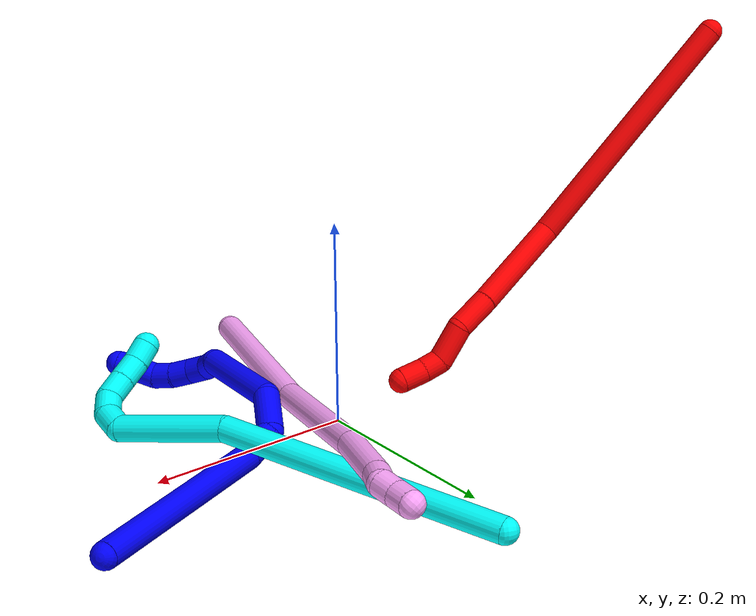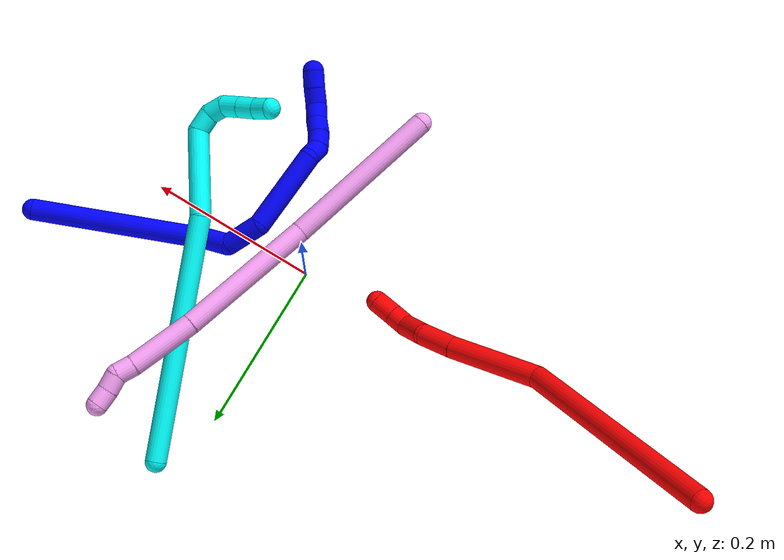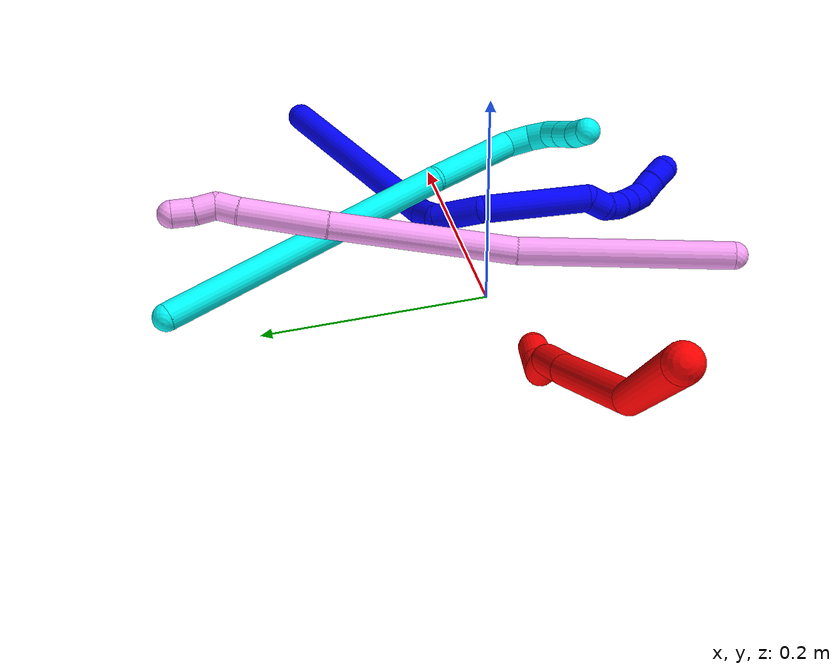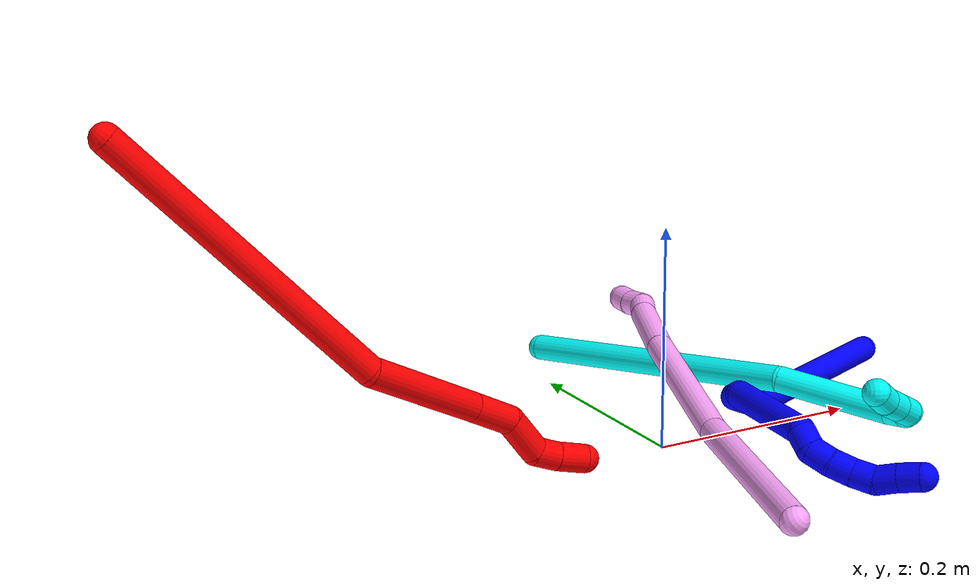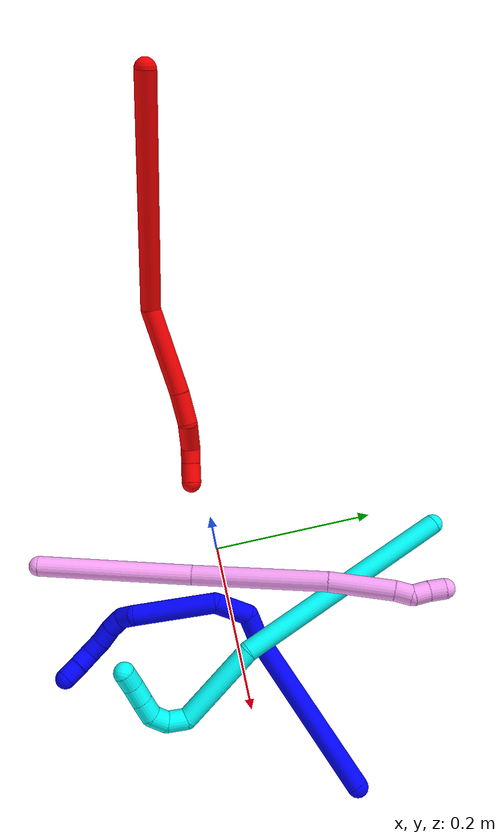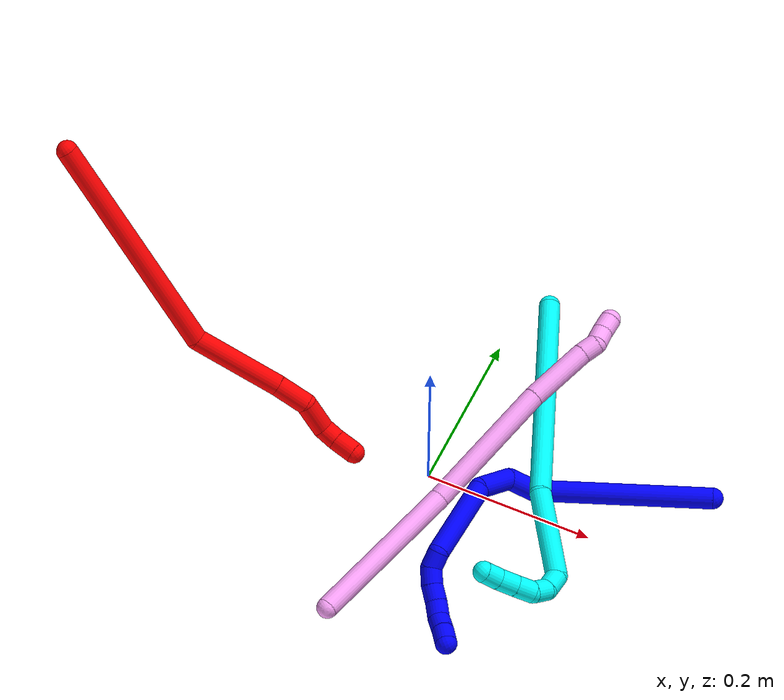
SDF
<sdf version="1.7">
 <world name="default">
  <plugin name="TubeGeneratorPlugin" filename="libtube_generator_plugin.so"/>
  <model name="photoneo_s_sensor">
   <static>1</static>
   <pose>0 0 2 1.57079 1.57079 3.14159</pose>
   <link name="link">
    <inertial><mass>0.1</mass></inertial>
    <sensor name="sensor" type="depth">
     <update_rate>30</update_rate>
     <camera>
      <horizontal_fov>1.22</horizontal_fov>
      <image><width>1920</width><height>1200</height><format>B8G8R8</format></image>
      <clip><near>0.1</near><far>4</far></clip>
      <depth_camera><output>points</output></depth_camera>
     </camera>
     <plugin name="camera_plugin" filename="libgazebo_ros_depth_camera.so">
      <baseline>0.2</baseline>
      <alwaysOn>1</alwaysOn>
      <updateRate>0.0</updateRate>
      <cameraName>camera_ir</cameraName>
      <imageTopicName>/camera/color/image_raw</imageTopicName>
      <cameraInfoTopicName>/camera/color/camera_info</cameraInfoTopicName>
      <depthImageTopicName>/camera/depth/image_raw</depthImageTopicName>
      <depthImageCameraInfoTopicName>/camera/depth/camera_info</depthImageCameraInfoTopicName>
      <pointCloudTopicName>/camera/depth/points</pointCloudTopicName>
      <frameName>fr_optical</frameName>
      <pointCloudCutoff>0.1</pointCloudCutoff>
      <pointCloudCutoffMax>2.0</pointCloudCutoffMax>
      <distortionK1>0</distortionK1>
      <distortionK2>0</distortionK2>
      <distortionK3>0</distortionK3>
      <distortionT1>0</distortionT1>
      <distortionT2>0</distortionT2>
      <CxPrime>0</CxPrime>
      <Cx>0</Cx>
      <Cy>0</Cy>
      <focalLength>0</focalLength>
      <hackBaseline>0</hackBaseline>
     </plugin>
    </sensor>
   </link>
  </model>
  <gravity>0 0 -9.8</gravity>
  <magnetic_field>6e-06 2.3e-05 -4.2e-05</magnetic_field>
  <atmosphere type="adiabatic"/>
  <physics name="default_physics" default="0" type="ode">
   <max_step_size>0.003</max_step_size>
   <real_time_factor>1</real_time_factor>
   <real_time_update_rate>1000</real_time_update_rate>
   <max_contacts>10000</max_contacts>
   <ode>
    <solver>
     <type>quick</type>
     <iters>100</iters>
     <sor>1.3</sor>
     <use_dynamic_moi_rescaling>0</use_dynamic_moi_rescaling>
    </solver>
    <constraints>
     <contact_max_correcting_vel>0</contact_max_correcting_vel>
     <contact_surface_layer>0.001</contact_surface_layer>
     <cfm>0</cfm>
     <erp>0.2</erp>
    </constraints>
   </ode>
  </physics>
  <scene><ambient>0.4 0.4 0.4 1</ambient><background>0.7 0.7 0.7 1</background><shadows>0</shadows></scene>
  <audio><device>default</device></audio>
  <spherical_coordinates>
   <surface_model>EARTH_WGS84</surface_model>
   <latitude_deg>0</latitude_deg>
   <longitude_deg>0</longitude_deg>
   <elevation>0</elevation>
   <heading_deg>0</heading_deg>
  </spherical_coordinates>
  <model name="bin">
   <static>1</static>
   <link name="bottom">
    <collision name="collision-bottom">
     <pose>0 0 -0.01 0 -0 0</pose>
     <geometry><box><size>0.8 0.6 0.02</size></box></geometry>
     <surface>
      <friction><ode><mu>100</mu><mu2>100</mu2></ode></friction>
      <contact><collide_bitmask>65535</collide_bitmask></contact>
     </surface>
    </collision>
   </link>
   <link name="west_wall">
    <collision name="collision-west_wall">
     <pose>-0.41 0 0.1 0 -0 0</pose>
     <geometry><box><size>0.02 0.6 0.2</size></box></geometry>
     <surface>
      <friction><ode><mu>100</mu><mu2>100</mu2></ode></friction>
      <contact><collide_bitmask>65535</collide_bitmask></contact>
     </surface>
    </collision>
   </link>
   <link name="east_wall">
    <collision name="collision-east_wall">
     <pose>0.41 0 0.1 0 -0 0</pose>
     <geometry><box><size>0.02 0.6 0.2</size></box></geometry>
     <surface>
      <friction><ode><mu>100</mu><mu2>100</mu2></ode></friction>
      <contact><collide_bitmask>65535</collide_bitmask></contact>
     </surface>
    </collision>
   </link>
   <link name="south_wall">
    <collision name="collision-south_wall">
     <pose>0 -0.31 0.1 0 -0 0</pose>
     <geometry><box><size>0.8 0.02 0.2</size></box></geometry>
     <surface>
      <friction><ode><mu>100</mu><mu2>100</mu2></ode></friction>
      <contact><collide_bitmask>65535</collide_bitmask></contact>
     </surface>
    </collision>
   </link>
   <link name="north_wall">
    <collision name="collision-north_wall">
     <pose>0 0.31 0.1 0 -0 0</pose>
     <geometry><box><size>0.8 0.02 0.2</size></box></geometry>
     <surface>
      <friction><ode><mu>100</mu><mu2>100</mu2></ode></friction>
      <contact><collide_bitmask>65535</collide_bitmask></contact>
     </surface>
    </collision>
   </link>
  </model>
  <model name="1">
   <static>0</static>
   <link name="1">
    <collision name="collision-cylinder-e_1_1_4">
     <pose>-0.046195 0.008323 -0.09092 -3.0503 -0.46841 2.76327</pose>
     <geometry><cylinder><radius>0.0125</radius><length>0.204642</length></cylinder></geometry>
     <surface>
      <friction><ode><mu>1.16</mu><mu2>1.16</mu2><slip1>0</slip1><slip2>0</slip2></ode></friction>
      <contact><ode><kp>1e+06</kp><kd>1</kd><max_vel>0</max_vel><min_depth>0.001</min_depth></ode></contact>
     </surface>
    </collision>
    <visual name="visual-cylinder-e_1_1_4">
     <pose>-0.046195 0.008323 -0.09092 -3.0503 -0.46841 2.76327</pose>
     <geometry><cylinder><radius>0.0125</radius><length>0.204642</length></cylinder></geometry>
     <material><ambient>0 0 1 1</ambient></material>
    </visual>
    <collision name="collision-cylinder-e_2_4_5">
     <pose>-0.105397 0.016515 -0.191349 3.12774 -0.939459 -3.1143</pose>
     <geometry><cylinder><radius>0.0125</radius><length>0.032228</length></cylinder></geometry>
     <surface>
      <friction><ode><mu>1.16</mu><mu2>1.16</mu2><slip1>0</slip1><slip2>0</slip2></ode></friction>
      <contact><ode><kp>1e+06</kp><kd>1</kd><max_vel>0</max_vel><min_depth>0.001</min_depth></ode></contact>
     </surface>
    </collision>
    <visual name="visual-cylinder-e_2_4_5">
     <pose>-0.105397 0.016515 -0.191349 3.12774 -0.939459 -3.1143</pose>
     <geometry><cylinder><radius>0.0125</radius><length>0.032228</length></cylinder></geometry>
     <material><ambient>0 0 1 1</ambient></material>
    </visual>
    <collision name="collision-cylinder-e_3_5_6">
     <pose>-0.127061 0.002289 -0.216134 2.39637 -0.394633 -0.945566</pose>
     <geometry><cylinder><radius>0.0125</radius><length>0.045028</length></cylinder></geometry>
     <surface>
      <friction><ode><mu>1.16</mu><mu2>1.16</mu2><slip1>0</slip1><slip2>0</slip2></ode></friction>
      <contact><ode><kp>1e+06</kp><kd>1</kd><max_vel>0</max_vel><min_depth>0.001</min_depth></ode></contact>
     </surface>
    </collision>
    <visual name="visual-cylinder-e_3_5_6">
     <pose>-0.127061 0.002289 -0.216134 2.39637 -0.394633 -0.945566</pose>
     <geometry><cylinder><radius>0.0125</radius><length>0.045028</length></cylinder></geometry>
     <material><ambient>0 0 1 1</ambient></material>
    </visual>
    <collision name="collision-cylinder-e_4_6_7">
     <pose>-0.126166 -0.047687 -0.263378 2.29859 0.196199 0.432136</pose>
     <geometry><cylinder><radius>0.0125</radius><length>0.097996</length></cylinder></geometry>
     <surface>
      <friction><ode><mu>1.16</mu><mu2>1.16</mu2><slip1>0</slip1><slip2>0</slip2></ode></friction>
      <contact><ode><kp>1e+06</kp><kd>1</kd><max_vel>0</max_vel><min_depth>0.001</min_depth></ode></contact>
     </surface>
    </collision>
    <visual name="visual-cylinder-e_4_6_7">
     <pose>-0.126166 -0.047687 -0.263378 2.29859 0.196199 0.432136</pose>
     <geometry><cylinder><radius>0.0125</radius><length>0.097996</length></cylinder></geometry>
     <material><ambient>0 0 1 1</ambient></material>
    </visual>
    <collision name="collision-cylinder-e_5_7_8">
     <pose>-0.110766 -0.086618 -0.30289 2.75739 0.623263 2.05517</pose>
     <geometry><cylinder><radius>0.0125</radius><length>0.020038</length></cylinder></geometry>
     <surface>
      <friction><ode><mu>1.16</mu><mu2>1.16</mu2><slip1>0</slip1><slip2>0</slip2></ode></friction>
      <contact><ode><kp>1e+06</kp><kd>1</kd><max_vel>0</max_vel><min_depth>0.001</min_depth></ode></contact>
     </surface>
    </collision>
    <visual name="visual-cylinder-e_5_7_8">
     <pose>-0.110766 -0.086618 -0.30289 2.75739 0.623263 2.05517</pose>
     <geometry><cylinder><radius>0.0125</radius><length>0.020038</length></cylinder></geometry>
     <material><ambient>0 0 1 1</ambient></material>
    </visual>
    <collision name="collision-cylinder-e_6_8_9">
     <pose>-0.097586 -0.095701 -0.313585 2.0524 0.822454 1.24803</pose>
     <geometry><cylinder><radius>0.0125</radius><length>0.02001</length></cylinder></geometry>
     <surface>
      <friction><ode><mu>1.16</mu><mu2>1.16</mu2><slip1>0</slip1><slip2>0</slip2></ode></friction>
      <contact><ode><kp>1e+06</kp><kd>1</kd><max_vel>0</max_vel><min_depth>0.001</min_depth></ode></contact>
     </surface>
    </collision>
    <visual name="visual-cylinder-e_6_8_9">
     <pose>-0.097586 -0.095701 -0.313585 2.0524 0.822454 1.24803</pose>
     <geometry><cylinder><radius>0.0125</radius><length>0.02001</length></cylinder></geometry>
     <material><ambient>0 0 1 1</ambient></material>
    </visual>
    <collision name="collision-cylinder-e_7_9_10">
     <pose>-0.082645 -0.108113 -0.31803 1.77052 0.8632 1.02573</pose>
     <geometry><cylinder><radius>0.0125</radius><length>0.020025</length></cylinder></geometry>
     <surface>
      <friction><ode><mu>1.16</mu><mu2>1.16</mu2><slip1>0</slip1><slip2>0</slip2></ode></friction>
      <contact><ode><kp>1e+06</kp><kd>1</kd><max_vel>0</max_vel><min_depth>0.001</min_depth></ode></contact>
     </surface>
    </collision>
    <visual name="visual-cylinder-e_7_9_10">
     <pose>-0.082645 -0.108113 -0.31803 1.77052 0.8632 1.02573</pose>
     <geometry><cylinder><radius>0.0125</radius><length>0.020025</length></cylinder></geometry>
     <material><ambient>0 0 1 1</ambient></material>
    </visual>
    <collision name="collision-cylinder-e_8_10_11">
     <pose>-0.068711 -0.122059 -0.321031 1.79303 0.684096 0.838165</pose>
     <geometry><cylinder><radius>0.0125</radius><length>0.020019</length></cylinder></geometry>
     <surface>
      <friction><ode><mu>1.16</mu><mu2>1.16</mu2><slip1>0</slip1><slip2>0</slip2></ode></friction>
      <contact><ode><kp>1e+06</kp><kd>1</kd><max_vel>0</max_vel><min_depth>0.001</min_depth></ode></contact>
     </surface>
    </collision>
    <visual name="visual-cylinder-e_8_10_11">
     <pose>-0.068711 -0.122059 -0.321031 1.79303 0.684096 0.838165</pose>
     <geometry><cylinder><radius>0.0125</radius><length>0.020019</length></cylinder></geometry>
     <material><ambient>0 0 1 1</ambient></material>
    </visual>
    <collision name="collision-cylinder-e_9_11_12">
     <pose>-0.059345 -0.139131 -0.322078 1.50118 0.308836 0.288346</pose>
     <geometry><cylinder><radius>0.0125</radius><length>0.020003</length></cylinder></geometry>
     <surface>
      <friction><ode><mu>1.16</mu><mu2>1.16</mu2><slip1>0</slip1><slip2>0</slip2></ode></friction>
      <contact><ode><kp>1e+06</kp><kd>1</kd><max_vel>0</max_vel><min_depth>0.001</min_depth></ode></contact>
     </surface>
    </collision>
    <visual name="visual-cylinder-e_9_11_12">
     <pose>-0.059345 -0.139131 -0.322078 1.50118 0.308836 0.288346</pose>
     <geometry><cylinder><radius>0.0125</radius><length>0.020003</length></cylinder></geometry>
     <material><ambient>0 0 1 1</ambient></material>
    </visual>
    <collision name="collision-cylinder-e_10_12_2">
     <pose>-0.05279 -0.158002 -0.321533 1.58345 0.35897 0.36344</pose>
     <geometry><cylinder><radius>0.0125</radius><length>0.020009</length></cylinder></geometry>
     <surface>
      <friction><ode><mu>1.16</mu><mu2>1.16</mu2><slip1>0</slip1><slip2>0</slip2></ode></friction>
      <contact><ode><kp>1e+06</kp><kd>1</kd><max_vel>0</max_vel><min_depth>0.001</min_depth></ode></contact>
     </surface>
    </collision>
    <visual name="visual-cylinder-e_10_12_2">
     <pose>-0.05279 -0.158002 -0.321533 1.58345 0.35897 0.36344</pose>
     <geometry><cylinder><radius>0.0125</radius><length>0.020009</length></cylinder></geometry>
     <material><ambient>0 0 1 1</ambient></material>
    </visual>
    <collision name="collision-sphere-2">
     <pose>-0.049275 -0.167369 -0.321652 0 -0 0</pose>
     <geometry><sphere><radius>0.0125</radius></sphere></geometry>
     <surface>
      <friction><ode><mu>1.16</mu><mu2>1.16</mu2><slip1>0</slip1><slip2>0</slip2></ode></friction>
      <contact><ode><kp>1e+06</kp><kd>1</kd><max_vel>0</max_vel><min_depth>0.001</min_depth></ode></contact>
     </surface>
    </collision>
    <visual name="visual-sphere-2">
     <pose>-0.049275 -0.167369 -0.321652 0 -0 0</pose>
     <geometry><sphere><radius>0.0125</radius></sphere></geometry>
     <material><ambient>0 0 1 1</ambient></material>
    </visual>
    <collision name="collision-sphere-12">
     <pose>-0.056305 -0.148636 -0.321415 0 -0 0</pose>
     <geometry><sphere><radius>0.0125</radius></sphere></geometry>
     <surface>
      <friction><ode><mu>1.16</mu><mu2>1.16</mu2><slip1>0</slip1><slip2>0</slip2></ode></friction>
      <contact><ode><kp>1e+06</kp><kd>1</kd><max_vel>0</max_vel><min_depth>0.001</min_depth></ode></contact>
     </surface>
    </collision>
    <visual name="visual-sphere-12">
     <pose>-0.056305 -0.148636 -0.321415 0 -0 0</pose>
     <geometry><sphere><radius>0.0125</radius></sphere></geometry>
     <material><ambient>0 0 1 1</ambient></material>
    </visual>
    <collision name="collision-sphere-11">
     <pose>-0.062385 -0.129625 -0.32274 0 -0 0</pose>
     <geometry><sphere><radius>0.0125</radius></sphere></geometry>
     <surface>
      <friction><ode><mu>1.16</mu><mu2>1.16</mu2><slip1>0</slip1><slip2>0</slip2></ode></friction>
      <contact><ode><kp>1e+06</kp><kd>1</kd><max_vel>0</max_vel><min_depth>0.001</min_depth></ode></contact>
     </surface>
    </collision>
    <visual name="visual-sphere-11">
     <pose>-0.062385 -0.129625 -0.32274 0 -0 0</pose>
     <geometry><sphere><radius>0.0125</radius></sphere></geometry>
     <material><ambient>0 0 1 1</ambient></material>
    </visual>
    <collision name="collision-sphere-10">
     <pose>-0.075036 -0.114492 -0.319321 0 -0 0</pose>
     <geometry><sphere><radius>0.0125</radius></sphere></geometry>
     <surface>
      <friction><ode><mu>1.16</mu><mu2>1.16</mu2><slip1>0</slip1><slip2>0</slip2></ode></friction>
      <contact><ode><kp>1e+06</kp><kd>1</kd><max_vel>0</max_vel><min_depth>0.001</min_depth></ode></contact>
     </surface>
    </collision>
    <visual name="visual-sphere-10">
     <pose>-0.075036 -0.114492 -0.319321 0 -0 0</pose>
     <geometry><sphere><radius>0.0125</radius></sphere></geometry>
     <material><ambient>0 0 1 1</ambient></material>
    </visual>
    <collision name="collision-sphere-9">
     <pose>-0.090254 -0.101734 -0.316738 0 -0 0</pose>
     <geometry><sphere><radius>0.0125</radius></sphere></geometry>
     <surface>
      <friction><ode><mu>1.16</mu><mu2>1.16</mu2><slip1>0</slip1><slip2>0</slip2></ode></friction>
      <contact><ode><kp>1e+06</kp><kd>1</kd><max_vel>0</max_vel><min_depth>0.001</min_depth></ode></contact>
     </surface>
    </collision>
    <visual name="visual-sphere-9">
     <pose>-0.090254 -0.101734 -0.316738 0 -0 0</pose>
     <geometry><sphere><radius>0.0125</radius></sphere></geometry>
     <material><ambient>0 0 1 1</ambient></material>
    </visual>
    <collision name="collision-sphere-4">
     <pose>-0.092389 0.016646 -0.181839 0 -0 0</pose>
     <geometry><sphere><radius>0.0125</radius></sphere></geometry>
     <surface>
      <friction><ode><mu>1.16</mu><mu2>1.16</mu2><slip1>0</slip1><slip2>0</slip2></ode></friction>
      <contact><ode><kp>1e+06</kp><kd>1</kd><max_vel>0</max_vel><min_depth>0.001</min_depth></ode></contact>
     </surface>
    </collision>
    <visual name="visual-sphere-4">
     <pose>-0.092389 0.016646 -0.181839 0 -0 0</pose>
     <geometry><sphere><radius>0.0125</radius></sphere></geometry>
     <material><ambient>0 0 1 1</ambient></material>
    </visual>
    <collision name="collision-sphere-1">
     <geometry><sphere><radius>0.0125</radius></sphere></geometry>
     <surface>
      <friction><ode><mu>1.16</mu><mu2>1.16</mu2><slip1>0</slip1><slip2>0</slip2></ode></friction>
      <contact><ode><kp>1e+06</kp><kd>1</kd><max_vel>0</max_vel><min_depth>0.001</min_depth></ode></contact>
     </surface>
    </collision>
    <visual name="visual-sphere-1">
     <geometry><sphere><radius>0.0125</radius></sphere></geometry>
     <material><ambient>0 0 1 1</ambient></material>
    </visual>
    <collision name="collision-sphere-8">
     <pose>-0.104918 -0.089668 -0.310432 0 -0 0</pose>
     <geometry><sphere><radius>0.0125</radius></sphere></geometry>
     <surface>
      <friction><ode><mu>1.16</mu><mu2>1.16</mu2><slip1>0</slip1><slip2>0</slip2></ode></friction>
      <contact><ode><kp>1e+06</kp><kd>1</kd><max_vel>0</max_vel><min_depth>0.001</min_depth></ode></contact>
     </surface>
    </collision>
    <visual name="visual-sphere-8">
     <pose>-0.104918 -0.089668 -0.310432 0 -0 0</pose>
     <geometry><sphere><radius>0.0125</radius></sphere></geometry>
     <material><ambient>0 0 1 1</ambient></material>
    </visual>
    <collision name="collision-sphere-5">
     <pose>-0.118405 0.016383 -0.20086 0 -0 0</pose>
     <geometry><sphere><radius>0.0125</radius></sphere></geometry>
     <surface>
      <friction><ode><mu>1.16</mu><mu2>1.16</mu2><slip1>0</slip1><slip2>0</slip2></ode></friction>
      <contact><ode><kp>1e+06</kp><kd>1</kd><max_vel>0</max_vel><min_depth>0.001</min_depth></ode></contact>
     </surface>
    </collision>
    <visual name="visual-sphere-5">
     <pose>-0.118405 0.016383 -0.20086 0 -0 0</pose>
     <geometry><sphere><radius>0.0125</radius></sphere></geometry>
     <material><ambient>0 0 1 1</ambient></material>
    </visual>
    <collision name="collision-sphere-6">
     <pose>-0.135717 -0.011805 -0.231409 0 -0 0</pose>
     <geometry><sphere><radius>0.0125</radius></sphere></geometry>
     <surface>
      <friction><ode><mu>1.16</mu><mu2>1.16</mu2><slip1>0</slip1><slip2>0</slip2></ode></friction>
      <contact><ode><kp>1e+06</kp><kd>1</kd><max_vel>0</max_vel><min_depth>0.001</min_depth></ode></contact>
     </surface>
    </collision>
    <visual name="visual-sphere-6">
     <pose>-0.135717 -0.011805 -0.231409 0 -0 0</pose>
     <geometry><sphere><radius>0.0125</radius></sphere></geometry>
     <material><ambient>0 0 1 1</ambient></material>
    </visual>
    <collision name="collision-sphere-7">
     <pose>-0.116614 -0.083569 -0.295348 0 -0 0</pose>
     <geometry><sphere><radius>0.0125</radius></sphere></geometry>
     <surface>
      <friction><ode><mu>1.16</mu><mu2>1.16</mu2><slip1>0</slip1><slip2>0</slip2></ode></friction>
      <contact><ode><kp>1e+06</kp><kd>1</kd><max_vel>0</max_vel><min_depth>0.001</min_depth></ode></contact>
     </surface>
    </collision>
    <visual name="visual-sphere-7">
     <pose>-0.116614 -0.083569 -0.295348 0 -0 0</pose>
     <geometry><sphere><radius>0.0125</radius></sphere></geometry>
     <material><ambient>0 0 1 1</ambient></material>
    </visual>
    <inertial>
     <pose>-0.080763 -0.033077 -0.196662 0 -0 0</pose>
     <mass>0.5</mass>
     <inertia>
      <ixx>-0.000254</ixx>
      <ixy>0</ixy>
      <ixz>0</ixz>
      <iyy>0.000896</iyy>
      <iyz>0</iyz>
      <izz>0.0003</izz>
     </inertia>
    </inertial>
   </link>
   <pose>0.310571 0.101571 0.012921 -0.957346 0.898231 -0.369615</pose>
  </model>
  <model name="2">
   <static>0</static>
   <link name="2">
    <collision name="collision-cylinder-e_1_1_4">
     <pose>-0.003166 -0.002546 -0.133541 3.12253 -0.0237 -1.78685</pose>
     <geometry><cylinder><radius>0.0125</radius><length>0.267205</length></cylinder></geometry>
     <surface>
      <friction><ode><mu>1.16</mu><mu2>1.16</mu2><slip1>0</slip1><slip2>0</slip2></ode></friction>
      <contact><ode><kp>1e+06</kp><kd>1</kd><max_vel>0</max_vel><min_depth>0.001</min_depth></ode></contact>
     </surface>
    </collision>
    <visual name="visual-cylinder-e_1_1_4">
     <pose>-0.003166 -0.002546 -0.133541 3.12253 -0.0237 -1.78685</pose>
     <geometry><cylinder><radius>0.0125</radius><length>0.267205</length></cylinder></geometry>
     <material><ambient>1 0 0 1</ambient></material>
    </visual>
    <collision name="collision-cylinder-e_2_4_5">
     <pose>0.013438 0.00492 -0.316386 -2.94124 0.37442 -2.16594</pose>
     <geometry><cylinder><radius>0.0125</radius><length>0.108111</length></cylinder></geometry>
     <surface>
      <friction><ode><mu>1.16</mu><mu2>1.16</mu2><slip1>0</slip1><slip2>0</slip2></ode></friction>
      <contact><ode><kp>1e+06</kp><kd>1</kd><max_vel>0</max_vel><min_depth>0.001</min_depth></ode></contact>
     </surface>
    </collision>
    <visual name="visual-cylinder-e_2_4_5">
     <pose>0.013438 0.00492 -0.316386 -2.94124 0.37442 -2.16594</pose>
     <geometry><cylinder><radius>0.0125</radius><length>0.108111</length></cylinder></geometry>
     <material><ambient>1 0 0 1</ambient></material>
    </visual>
    <collision name="collision-cylinder-e_3_5_6">
     <pose>0.040283 0.017337 -0.384384 -3.01366 0.359133 -2.46315</pose>
     <geometry><cylinder><radius>0.0125</radius><length>0.040264</length></cylinder></geometry>
     <surface>
      <friction><ode><mu>1.16</mu><mu2>1.16</mu2><slip1>0</slip1><slip2>0</slip2></ode></friction>
      <contact><ode><kp>1e+06</kp><kd>1</kd><max_vel>0</max_vel><min_depth>0.001</min_depth></ode></contact>
     </surface>
    </collision>
    <visual name="visual-cylinder-e_3_5_6">
     <pose>0.040283 0.017337 -0.384384 -3.01366 0.359133 -2.46315</pose>
     <geometry><cylinder><radius>0.0125</radius><length>0.040264</length></cylinder></geometry>
     <material><ambient>1 0 0 1</ambient></material>
    </visual>
    <collision name="collision-cylinder-e_4_6_7">
     <pose>0.045118 0.02201 -0.422103 -3.02292 -0.116442 1.55183</pose>
     <geometry><cylinder><radius>0.0125</radius><length>0.03858</length></cylinder></geometry>
     <surface>
      <friction><ode><mu>1.16</mu><mu2>1.16</mu2><slip1>0</slip1><slip2>0</slip2></ode></friction>
      <contact><ode><kp>1e+06</kp><kd>1</kd><max_vel>0</max_vel><min_depth>0.001</min_depth></ode></contact>
     </surface>
    </collision>
    <visual name="visual-cylinder-e_4_6_7">
     <pose>0.045118 0.02201 -0.422103 -3.02292 -0.116442 1.55183</pose>
     <geometry><cylinder><radius>0.0125</radius><length>0.03858</length></cylinder></geometry>
     <material><ambient>1 0 0 1</ambient></material>
    </visual>
    <collision name="collision-cylinder-e_5_7_8">
     <pose>0.047092 0.022687 -0.450386 2.97134 0.421755 2.38292</pose>
     <geometry><cylinder><radius>0.0125</radius><length>0.020595</length></cylinder></geometry>
     <surface>
      <friction><ode><mu>1.16</mu><mu2>1.16</mu2><slip1>0</slip1><slip2>0</slip2></ode></friction>
      <contact><ode><kp>1e+06</kp><kd>1</kd><max_vel>0</max_vel><min_depth>0.001</min_depth></ode></contact>
     </surface>
    </collision>
    <visual name="visual-cylinder-e_5_7_8">
     <pose>0.047092 0.022687 -0.450386 2.97134 0.421755 2.38292</pose>
     <geometry><cylinder><radius>0.0125</radius><length>0.020595</length></cylinder></geometry>
     <material><ambient>1 0 0 1</ambient></material>
    </visual>
    <collision name="collision-cylinder-e_6_8_2">
     <pose>0.057857 0.018962 -0.470223 2.94259 0.545539 2.45603</pose>
     <geometry><cylinder><radius>0.0125</radius><length>0.025244</length></cylinder></geometry>
     <surface>
      <friction><ode><mu>1.16</mu><mu2>1.16</mu2><slip1>0</slip1><slip2>0</slip2></ode></friction>
      <contact><ode><kp>1e+06</kp><kd>1</kd><max_vel>0</max_vel><min_depth>0.001</min_depth></ode></contact>
     </surface>
    </collision>
    <visual name="visual-cylinder-e_6_8_2">
     <pose>0.057857 0.018962 -0.470223 2.94259 0.545539 2.45603</pose>
     <geometry><cylinder><radius>0.0125</radius><length>0.025244</length></cylinder></geometry>
     <material><ambient>1 0 0 1</ambient></material>
    </visual>
    <collision name="collision-sphere-2">
     <pose>0.064406 0.016829 -0.4808 0 -0 0</pose>
     <geometry><sphere><radius>0.0125</radius></sphere></geometry>
     <surface>
      <friction><ode><mu>1.16</mu><mu2>1.16</mu2><slip1>0</slip1><slip2>0</slip2></ode></friction>
      <contact><ode><kp>1e+06</kp><kd>1</kd><max_vel>0</max_vel><min_depth>0.001</min_depth></ode></contact>
     </surface>
    </collision>
    <visual name="visual-sphere-2">
     <pose>0.064406 0.016829 -0.4808 0 -0 0</pose>
     <geometry><sphere><radius>0.0125</radius></sphere></geometry>
     <material><ambient>1 0 0 1</ambient></material>
    </visual>
    <collision name="collision-sphere-4">
     <pose>-0.006332 -0.005092 -0.267081 0 -0 0</pose>
     <geometry><sphere><radius>0.0125</radius></sphere></geometry>
     <surface>
      <friction><ode><mu>1.16</mu><mu2>1.16</mu2><slip1>0</slip1><slip2>0</slip2></ode></friction>
      <contact><ode><kp>1e+06</kp><kd>1</kd><max_vel>0</max_vel><min_depth>0.001</min_depth></ode></contact>
     </surface>
    </collision>
    <visual name="visual-sphere-4">
     <pose>-0.006332 -0.005092 -0.267081 0 -0 0</pose>
     <geometry><sphere><radius>0.0125</radius></sphere></geometry>
     <material><ambient>1 0 0 1</ambient></material>
    </visual>
    <collision name="collision-sphere-1">
     <geometry><sphere><radius>0.0125</radius></sphere></geometry>
     <surface>
      <friction><ode><mu>1.16</mu><mu2>1.16</mu2><slip1>0</slip1><slip2>0</slip2></ode></friction>
      <contact><ode><kp>1e+06</kp><kd>1</kd><max_vel>0</max_vel><min_depth>0.001</min_depth></ode></contact>
     </surface>
    </collision>
    <visual name="visual-sphere-1">
     <geometry><sphere><radius>0.0125</radius></sphere></geometry>
     <material><ambient>1 0 0 1</ambient></material>
    </visual>
    <collision name="collision-sphere-8">
     <pose>0.051307 0.021095 -0.459646 0 -0 0</pose>
     <geometry><sphere><radius>0.0125</radius></sphere></geometry>
     <surface>
      <friction><ode><mu>1.16</mu><mu2>1.16</mu2><slip1>0</slip1><slip2>0</slip2></ode></friction>
      <contact><ode><kp>1e+06</kp><kd>1</kd><max_vel>0</max_vel><min_depth>0.001</min_depth></ode></contact>
     </surface>
    </collision>
    <visual name="visual-sphere-8">
     <pose>0.051307 0.021095 -0.459646 0 -0 0</pose>
     <geometry><sphere><radius>0.0125</radius></sphere></geometry>
     <material><ambient>1 0 0 1</ambient></material>
    </visual>
    <collision name="collision-sphere-5">
     <pose>0.033208 0.014933 -0.36569 0 -0 0</pose>
     <geometry><sphere><radius>0.0125</radius></sphere></geometry>
     <surface>
      <friction><ode><mu>1.16</mu><mu2>1.16</mu2><slip1>0</slip1><slip2>0</slip2></ode></friction>
      <contact><ode><kp>1e+06</kp><kd>1</kd><max_vel>0</max_vel><min_depth>0.001</min_depth></ode></contact>
     </surface>
    </collision>
    <visual name="visual-sphere-5">
     <pose>0.033208 0.014933 -0.36569 0 -0 0</pose>
     <geometry><sphere><radius>0.0125</radius></sphere></geometry>
     <material><ambient>1 0 0 1</ambient></material>
    </visual>
    <collision name="collision-sphere-6">
     <pose>0.047359 0.019742 -0.403078 0 -0 0</pose>
     <geometry><sphere><radius>0.0125</radius></sphere></geometry>
     <surface>
      <friction><ode><mu>1.16</mu><mu2>1.16</mu2><slip1>0</slip1><slip2>0</slip2></ode></friction>
      <contact><ode><kp>1e+06</kp><kd>1</kd><max_vel>0</max_vel><min_depth>0.001</min_depth></ode></contact>
     </surface>
    </collision>
    <visual name="visual-sphere-6">
     <pose>0.047359 0.019742 -0.403078 0 -0 0</pose>
     <geometry><sphere><radius>0.0125</radius></sphere></geometry>
     <material><ambient>1 0 0 1</ambient></material>
    </visual>
    <collision name="collision-sphere-7">
     <pose>0.042877 0.024279 -0.441127 0 -0 0</pose>
     <geometry><sphere><radius>0.0125</radius></sphere></geometry>
     <surface>
      <friction><ode><mu>1.16</mu><mu2>1.16</mu2><slip1>0</slip1><slip2>0</slip2></ode></friction>
      <contact><ode><kp>1e+06</kp><kd>1</kd><max_vel>0</max_vel><min_depth>0.001</min_depth></ode></contact>
     </surface>
    </collision>
    <visual name="visual-sphere-7">
     <pose>0.042877 0.024279 -0.441127 0 -0 0</pose>
     <geometry><sphere><radius>0.0125</radius></sphere></geometry>
     <material><ambient>1 0 0 1</ambient></material>
    </visual>
    <inertial>
     <pose>0.0128 0.00469 -0.245591 0 -0 0</pose>
     <mass>0.5</mass>
     <inertia>
      <ixx>-0.002045</ixx>
      <ixy>0</ixy>
      <ixz>0</ixz>
      <iyy>-0.001222</iyy>
      <iyz>0</iyz>
      <izz>-3.4e-05</izz>
     </inertia>
    </inertial>
   </link>
   <pose>-0.463173 0.032565 0.317234 -0.381199 -0.698229 0.324235</pose>
  </model>
  <model name="3">
   <static>0</static>
   <link name="3">
    <collision name="collision-cylinder-e_1_1_4">
     <pose>0.062772 -0.075766 0.102719 0.635523 0.457061 0.152706</pose>
     <geometry><cylinder><radius>0.0125</radius><length>0.284479</length></cylinder></geometry>
     <surface>
      <friction><ode><mu>1.16</mu><mu2>1.16</mu2><slip1>0</slip1><slip2>0</slip2></ode></friction>
      <contact><ode><kp>1e+06</kp><kd>1</kd><max_vel>0</max_vel><min_depth>0.001</min_depth></ode></contact>
     </surface>
    </collision>
    <visual name="visual-cylinder-e_1_1_4">
     <pose>0.062772 -0.075766 0.102719 0.635523 0.457061 0.152706</pose>
     <geometry><cylinder><radius>0.0125</radius><length>0.284479</length></cylinder></geometry>
     <material><ambient>0.003922 1 0.996078 1</ambient></material>
    </visual>
    <collision name="collision-cylinder-e_2_4_5">
     <pose>0.149963 -0.164571 0.250688 0.280531 0.478374 0.068834</pose>
     <geometry><cylinder><radius>0.0125</radius><length>0.106093</length></cylinder></geometry>
     <surface>
      <friction><ode><mu>1.16</mu><mu2>1.16</mu2><slip1>0</slip1><slip2>0</slip2></ode></friction>
      <contact><ode><kp>1e+06</kp><kd>1</kd><max_vel>0</max_vel><min_depth>0.001</min_depth></ode></contact>
     </surface>
    </collision>
    <visual name="visual-cylinder-e_2_4_5">
     <pose>0.149963 -0.164571 0.250688 0.280531 0.478374 0.068834</pose>
     <geometry><cylinder><radius>0.0125</radius><length>0.106093</length></cylinder></geometry>
     <material><ambient>0.003922 1 0.996078 1</ambient></material>
    </visual>
    <collision name="collision-cylinder-e_3_5_6">
     <pose>0.180814 -0.186893 0.300129 1.1469 0.563199 0.36941</pose>
     <geometry><cylinder><radius>0.0125</radius><length>0.024093</length></cylinder></geometry>
     <surface>
      <friction><ode><mu>1.16</mu><mu2>1.16</mu2><slip1>0</slip1><slip2>0</slip2></ode></friction>
      <contact><ode><kp>1e+06</kp><kd>1</kd><max_vel>0</max_vel><min_depth>0.001</min_depth></ode></contact>
     </surface>
    </collision>
    <visual name="visual-cylinder-e_3_5_6">
     <pose>0.180814 -0.186893 0.300129 1.1469 0.563199 0.36941</pose>
     <geometry><cylinder><radius>0.0125</radius><length>0.024093</length></cylinder></geometry>
     <material><ambient>0.003922 1 0.996078 1</ambient></material>
    </visual>
    <collision name="collision-cylinder-e_4_6_7">
     <pose>0.191223 -0.205362 0.302642 1.75137 0.402714 0.480085</pose>
     <geometry><cylinder><radius>0.0125</radius><length>0.020297</length></cylinder></geometry>
     <surface>
      <friction><ode><mu>1.16</mu><mu2>1.16</mu2><slip1>0</slip1><slip2>0</slip2></ode></friction>
      <contact><ode><kp>1e+06</kp><kd>1</kd><max_vel>0</max_vel><min_depth>0.001</min_depth></ode></contact>
     </surface>
    </collision>
    <visual name="visual-cylinder-e_4_6_7">
     <pose>0.191223 -0.205362 0.302642 1.75137 0.402714 0.480085</pose>
     <geometry><cylinder><radius>0.0125</radius><length>0.020297</length></cylinder></geometry>
     <material><ambient>0.003922 1 0.996078 1</ambient></material>
    </visual>
    <collision name="collision-cylinder-e_5_7_8">
     <pose>0.196977 -0.223074 0.293698 2.2766 0.157256 0.338089</pose>
     <geometry><cylinder><radius>0.0125</radius><length>0.022686</length></cylinder></geometry>
     <surface>
      <friction><ode><mu>1.16</mu><mu2>1.16</mu2><slip1>0</slip1><slip2>0</slip2></ode></friction>
      <contact><ode><kp>1e+06</kp><kd>1</kd><max_vel>0</max_vel><min_depth>0.001</min_depth></ode></contact>
     </surface>
    </collision>
    <visual name="visual-cylinder-e_5_7_8">
     <pose>0.196977 -0.223074 0.293698 2.2766 0.157256 0.338089</pose>
     <geometry><cylinder><radius>0.0125</radius><length>0.022686</length></cylinder></geometry>
     <material><ambient>0.003922 1 0.996078 1</ambient></material>
    </visual>
    <collision name="collision-cylinder-e_6_8_9">
     <pose>0.200307 -0.239943 0.279183 2.2861 0.139692 0.304535</pose>
     <geometry><cylinder><radius>0.0125</radius><length>0.02232</length></cylinder></geometry>
     <surface>
      <friction><ode><mu>1.16</mu><mu2>1.16</mu2><slip1>0</slip1><slip2>0</slip2></ode></friction>
      <contact><ode><kp>1e+06</kp><kd>1</kd><max_vel>0</max_vel><min_depth>0.001</min_depth></ode></contact>
     </surface>
    </collision>
    <visual name="visual-cylinder-e_6_8_9">
     <pose>0.200307 -0.239943 0.279183 2.2861 0.139692 0.304535</pose>
     <geometry><cylinder><radius>0.0125</radius><length>0.02232</length></cylinder></geometry>
     <material><ambient>0.003922 1 0.996078 1</ambient></material>
    </visual>
    <collision name="collision-cylinder-e_7_9_2">
     <pose>0.202116 -0.256441 0.266126 2.18966 0.02545 0.049364</pose>
     <geometry><cylinder><radius>0.0125</radius><length>0.020032</length></cylinder></geometry>
     <surface>
      <friction><ode><mu>1.16</mu><mu2>1.16</mu2><slip1>0</slip1><slip2>0</slip2></ode></friction>
      <contact><ode><kp>1e+06</kp><kd>1</kd><max_vel>0</max_vel><min_depth>0.001</min_depth></ode></contact>
     </surface>
    </collision>
    <visual name="visual-cylinder-e_7_9_2">
     <pose>0.202116 -0.256441 0.266126 2.18966 0.02545 0.049364</pose>
     <geometry><cylinder><radius>0.0125</radius><length>0.020032</length></cylinder></geometry>
     <material><ambient>0.003922 1 0.996078 1</ambient></material>
    </visual>
    <collision name="collision-sphere-2">
     <pose>0.202371 -0.264597 0.260318 0 -0 0</pose>
     <geometry><sphere><radius>0.0125</radius></sphere></geometry>
     <surface>
      <friction><ode><mu>1.16</mu><mu2>1.16</mu2><slip1>0</slip1><slip2>0</slip2></ode></friction>
      <contact><ode><kp>1e+06</kp><kd>1</kd><max_vel>0</max_vel><min_depth>0.001</min_depth></ode></contact>
     </surface>
    </collision>
    <visual name="visual-sphere-2">
     <pose>0.202371 -0.264597 0.260318 0 -0 0</pose>
     <geometry><sphere><radius>0.0125</radius></sphere></geometry>
     <material><ambient>0.003922 1 0.996078 1</ambient></material>
    </visual>
    <collision name="collision-sphere-9">
     <pose>0.201861 -0.248286 0.271935 0 -0 0</pose>
     <geometry><sphere><radius>0.0125</radius></sphere></geometry>
     <surface>
      <friction><ode><mu>1.16</mu><mu2>1.16</mu2><slip1>0</slip1><slip2>0</slip2></ode></friction>
      <contact><ode><kp>1e+06</kp><kd>1</kd><max_vel>0</max_vel><min_depth>0.001</min_depth></ode></contact>
     </surface>
    </collision>
    <visual name="visual-sphere-9">
     <pose>0.201861 -0.248286 0.271935 0 -0 0</pose>
     <geometry><sphere><radius>0.0125</radius></sphere></geometry>
     <material><ambient>0.003922 1 0.996078 1</ambient></material>
    </visual>
    <collision name="collision-sphere-4">
     <pose>0.125544 -0.151533 0.205438 0 -0 0</pose>
     <geometry><sphere><radius>0.0125</radius></sphere></geometry>
     <surface>
      <friction><ode><mu>1.16</mu><mu2>1.16</mu2><slip1>0</slip1><slip2>0</slip2></ode></friction>
      <contact><ode><kp>1e+06</kp><kd>1</kd><max_vel>0</max_vel><min_depth>0.001</min_depth></ode></contact>
     </surface>
    </collision>
    <visual name="visual-sphere-4">
     <pose>0.125544 -0.151533 0.205438 0 -0 0</pose>
     <geometry><sphere><radius>0.0125</radius></sphere></geometry>
     <material><ambient>0.003922 1 0.996078 1</ambient></material>
    </visual>
    <collision name="collision-sphere-1">
     <geometry><sphere><radius>0.0125</radius></sphere></geometry>
     <surface>
      <friction><ode><mu>1.16</mu><mu2>1.16</mu2><slip1>0</slip1><slip2>0</slip2></ode></friction>
      <contact><ode><kp>1e+06</kp><kd>1</kd><max_vel>0</max_vel><min_depth>0.001</min_depth></ode></contact>
     </surface>
    </collision>
    <visual name="visual-sphere-1">
     <geometry><sphere><radius>0.0125</radius></sphere></geometry>
     <material><ambient>0.003922 1 0.996078 1</ambient></material>
    </visual>
    <collision name="collision-sphere-8">
     <pose>0.198753 -0.2316 0.286431 0 -0 0</pose>
     <geometry><sphere><radius>0.0125</radius></sphere></geometry>
     <surface>
      <friction><ode><mu>1.16</mu><mu2>1.16</mu2><slip1>0</slip1><slip2>0</slip2></ode></friction>
      <contact><ode><kp>1e+06</kp><kd>1</kd><max_vel>0</max_vel><min_depth>0.001</min_depth></ode></contact>
     </surface>
    </collision>
    <visual name="visual-sphere-8">
     <pose>0.198753 -0.2316 0.286431 0 -0 0</pose>
     <geometry><sphere><radius>0.0125</radius></sphere></geometry>
     <material><ambient>0.003922 1 0.996078 1</ambient></material>
    </visual>
    <collision name="collision-sphere-5">
     <pose>0.174382 -0.177609 0.295939 0 -0 0</pose>
     <geometry><sphere><radius>0.0125</radius></sphere></geometry>
     <surface>
      <friction><ode><mu>1.16</mu><mu2>1.16</mu2><slip1>0</slip1><slip2>0</slip2></ode></friction>
      <contact><ode><kp>1e+06</kp><kd>1</kd><max_vel>0</max_vel><min_depth>0.001</min_depth></ode></contact>
     </surface>
    </collision>
    <visual name="visual-sphere-5">
     <pose>0.174382 -0.177609 0.295939 0 -0 0</pose>
     <geometry><sphere><radius>0.0125</radius></sphere></geometry>
     <material><ambient>0.003922 1 0.996078 1</ambient></material>
    </visual>
    <collision name="collision-sphere-6">
     <pose>0.187245 -0.196177 0.304319 0 -0 0</pose>
     <geometry><sphere><radius>0.0125</radius></sphere></geometry>
     <surface>
      <friction><ode><mu>1.16</mu><mu2>1.16</mu2><slip1>0</slip1><slip2>0</slip2></ode></friction>
      <contact><ode><kp>1e+06</kp><kd>1</kd><max_vel>0</max_vel><min_depth>0.001</min_depth></ode></contact>
     </surface>
    </collision>
    <visual name="visual-sphere-6">
     <pose>0.187245 -0.196177 0.304319 0 -0 0</pose>
     <geometry><sphere><radius>0.0125</radius></sphere></geometry>
     <material><ambient>0.003922 1 0.996078 1</ambient></material>
    </visual>
    <collision name="collision-sphere-7">
     <pose>0.1952 -0.214547 0.300965 0 -0 0</pose>
     <geometry><sphere><radius>0.0125</radius></sphere></geometry>
     <surface>
      <friction><ode><mu>1.16</mu><mu2>1.16</mu2><slip1>0</slip1><slip2>0</slip2></ode></friction>
      <contact><ode><kp>1e+06</kp><kd>1</kd><max_vel>0</max_vel><min_depth>0.001</min_depth></ode></contact>
     </surface>
    </collision>
    <visual name="visual-sphere-7">
     <pose>0.1952 -0.214547 0.300965 0 -0 0</pose>
     <geometry><sphere><radius>0.0125</radius></sphere></geometry>
     <material><ambient>0.003922 1 0.996078 1</ambient></material>
    </visual>
    <inertial>
     <pose>0.109987 -0.126476 0.174833 0 -0 0</pose>
     <mass>0.5</mass>
     <inertia>
      <ixx>0.002099</ixx>
      <ixy>0</ixy>
      <ixz>0</ixz>
      <iyy>0.001962</iyy>
      <iyz>0</iyz>
      <izz>0.000179</izz>
     </inertia>
    </inertial>
   </link>
   <pose>0.031618 0.274455 0.011572 -1.58612 0.735086 -2.02182</pose>
  </model>
  <model name="4">
   <static>0</static>
   <link name="4">
    <collision name="collision-cylinder-e_1_1_4">
     <pose>0.014968 0.080529 -0.050049 -2.12688 0.156568 -0.280377</pose>
     <geometry><cylinder><radius>0.0125</radius><length>0.191978</length></cylinder></geometry>
     <surface>
      <friction><ode><mu>1.16</mu><mu2>1.16</mu2><slip1>0</slip1><slip2>0</slip2></ode></friction>
      <contact><ode><kp>1e+06</kp><kd>1</kd><max_vel>0</max_vel><min_depth>0.001</min_depth></ode></contact>
     </surface>
    </collision>
    <visual name="visual-cylinder-e_1_1_4">
     <pose>0.014968 0.080529 -0.050049 -2.12688 0.156568 -0.280377</pose>
     <geometry><cylinder><radius>0.0125</radius><length>0.191978</length></cylinder></geometry>
     <material><ambient>1 0.65098 0.996078 1</ambient></material>
    </visual>
    <collision name="collision-cylinder-e_2_4_5">
     <pose>0.036929 0.23655 -0.135807 -2.01262 0.083557 -0.131843</pose>
     <geometry><cylinder><radius>0.0125</radius><length>0.167605</length></cylinder></geometry>
     <surface>
      <friction><ode><mu>1.16</mu><mu2>1.16</mu2><slip1>0</slip1><slip2>0</slip2></ode></friction>
      <contact><ode><kp>1e+06</kp><kd>1</kd><max_vel>0</max_vel><min_depth>0.001</min_depth></ode></contact>
     </surface>
    </collision>
    <visual name="visual-cylinder-e_2_4_5">
     <pose>0.036929 0.23655 -0.135807 -2.01262 0.083557 -0.131843</pose>
     <geometry><cylinder><radius>0.0125</radius><length>0.167605</length></cylinder></geometry>
     <material><ambient>1 0.65098 0.996078 1</ambient></material>
    </visual>
    <collision name="collision-cylinder-e_3_5_6">
     <pose>0.050527 0.347656 -0.187379 -1.98984 0.167778 -0.257576</pose>
     <geometry><cylinder><radius>0.0125</radius><length>0.079088</length></cylinder></geometry>
     <surface>
      <friction><ode><mu>1.16</mu><mu2>1.16</mu2><slip1>0</slip1><slip2>0</slip2></ode></friction>
      <contact><ode><kp>1e+06</kp><kd>1</kd><max_vel>0</max_vel><min_depth>0.001</min_depth></ode></contact>
     </surface>
    </collision>
    <visual name="visual-cylinder-e_3_5_6">
     <pose>0.050527 0.347656 -0.187379 -1.98984 0.167778 -0.257576</pose>
     <geometry><cylinder><radius>0.0125</radius><length>0.079088</length></cylinder></geometry>
     <material><ambient>1 0.65098 0.996078 1</ambient></material>
    </visual>
    <collision name="collision-cylinder-e_4_6_7">
     <pose>0.05998 0.392891 -0.206588 -1.90543 0.272755 -0.381321</pose>
     <geometry><cylinder><radius>0.0125</radius><length>0.021151</length></cylinder></geometry>
     <surface>
      <friction><ode><mu>1.16</mu><mu2>1.16</mu2><slip1>0</slip1><slip2>0</slip2></ode></friction>
      <contact><ode><kp>1e+06</kp><kd>1</kd><max_vel>0</max_vel><min_depth>0.001</min_depth></ode></contact>
     </surface>
    </collision>
    <visual name="visual-cylinder-e_4_6_7">
     <pose>0.05998 0.392891 -0.206588 -1.90543 0.272755 -0.381321</pose>
     <geometry><cylinder><radius>0.0125</radius><length>0.021151</length></cylinder></geometry>
     <material><ambient>1 0.65098 0.996078 1</ambient></material>
    </visual>
    <collision name="collision-cylinder-e_5_7_8">
     <pose>0.062463 0.409154 -0.217421 -2.4159 -0.036532 0.09616</pose>
     <geometry><cylinder><radius>0.0125</radius><length>0.020032</length></cylinder></geometry>
     <surface>
      <friction><ode><mu>1.16</mu><mu2>1.16</mu2><slip1>0</slip1><slip2>0</slip2></ode></friction>
      <contact><ode><kp>1e+06</kp><kd>1</kd><max_vel>0</max_vel><min_depth>0.001</min_depth></ode></contact>
     </surface>
    </collision>
    <visual name="visual-cylinder-e_5_7_8">
     <pose>0.062463 0.409154 -0.217421 -2.4159 -0.036532 0.09616</pose>
     <geometry><cylinder><radius>0.0125</radius><length>0.020032</length></cylinder></geometry>
     <material><ambient>1 0.65098 0.996078 1</ambient></material>
    </visual>
    <collision name="collision-cylinder-e_6_8_2">
     <pose>0.062037 0.423557 -0.231328 -2.26195 -0.005895 0.012528</pose>
     <geometry><cylinder><radius>0.0125</radius><length>0.020144</length></cylinder></geometry>
     <surface>
      <friction><ode><mu>1.16</mu><mu2>1.16</mu2><slip1>0</slip1><slip2>0</slip2></ode></friction>
      <contact><ode><kp>1e+06</kp><kd>1</kd><max_vel>0</max_vel><min_depth>0.001</min_depth></ode></contact>
     </surface>
    </collision>
    <visual name="visual-cylinder-e_6_8_2">
     <pose>0.062037 0.423557 -0.231328 -2.26195 -0.005895 0.012528</pose>
     <geometry><cylinder><radius>0.0125</radius><length>0.020144</length></cylinder></geometry>
     <material><ambient>1 0.65098 0.996078 1</ambient></material>
    </visual>
    <collision name="collision-sphere-2">
     <pose>0.061978 0.431318 -0.237748 0 -0 0</pose>
     <geometry><sphere><radius>0.0125</radius></sphere></geometry>
     <surface>
      <friction><ode><mu>1.16</mu><mu2>1.16</mu2><slip1>0</slip1><slip2>0</slip2></ode></friction>
      <contact><ode><kp>1e+06</kp><kd>1</kd><max_vel>0</max_vel><min_depth>0.001</min_depth></ode></contact>
     </surface>
    </collision>
    <visual name="visual-sphere-2">
     <pose>0.061978 0.431318 -0.237748 0 -0 0</pose>
     <geometry><sphere><radius>0.0125</radius></sphere></geometry>
     <material><ambient>1 0.65098 0.996078 1</ambient></material>
    </visual>
    <collision name="collision-sphere-4">
     <pose>0.029935 0.161059 -0.100098 0 -0 0</pose>
     <geometry><sphere><radius>0.0125</radius></sphere></geometry>
     <surface>
      <friction><ode><mu>1.16</mu><mu2>1.16</mu2><slip1>0</slip1><slip2>0</slip2></ode></friction>
      <contact><ode><kp>1e+06</kp><kd>1</kd><max_vel>0</max_vel><min_depth>0.001</min_depth></ode></contact>
     </surface>
    </collision>
    <visual name="visual-sphere-4">
     <pose>0.029935 0.161059 -0.100098 0 -0 0</pose>
     <geometry><sphere><radius>0.0125</radius></sphere></geometry>
     <material><ambient>1 0.65098 0.996078 1</ambient></material>
    </visual>
    <collision name="collision-sphere-1">
     <geometry><sphere><radius>0.0125</radius></sphere></geometry>
     <surface>
      <friction><ode><mu>1.16</mu><mu2>1.16</mu2><slip1>0</slip1><slip2>0</slip2></ode></friction>
      <contact><ode><kp>1e+06</kp><kd>1</kd><max_vel>0</max_vel><min_depth>0.001</min_depth></ode></contact>
     </surface>
    </collision>
    <visual name="visual-sphere-1">
     <geometry><sphere><radius>0.0125</radius></sphere></geometry>
     <material><ambient>1 0.65098 0.996078 1</ambient></material>
    </visual>
    <collision name="collision-sphere-8">
     <pose>0.062097 0.415797 -0.224908 0 -0 0</pose>
     <geometry><sphere><radius>0.0125</radius></sphere></geometry>
     <surface>
      <friction><ode><mu>1.16</mu><mu2>1.16</mu2><slip1>0</slip1><slip2>0</slip2></ode></friction>
      <contact><ode><kp>1e+06</kp><kd>1</kd><max_vel>0</max_vel><min_depth>0.001</min_depth></ode></contact>
     </surface>
    </collision>
    <visual name="visual-sphere-8">
     <pose>0.062097 0.415797 -0.224908 0 -0 0</pose>
     <geometry><sphere><radius>0.0125</radius></sphere></geometry>
     <material><ambient>1 0.65098 0.996078 1</ambient></material>
    </visual>
    <collision name="collision-sphere-5">
     <pose>0.043923 0.312041 -0.171515 0 -0 0</pose>
     <geometry><sphere><radius>0.0125</radius></sphere></geometry>
     <surface>
      <friction><ode><mu>1.16</mu><mu2>1.16</mu2><slip1>0</slip1><slip2>0</slip2></ode></friction>
      <contact><ode><kp>1e+06</kp><kd>1</kd><max_vel>0</max_vel><min_depth>0.001</min_depth></ode></contact>
     </surface>
    </collision>
    <visual name="visual-sphere-5">
     <pose>0.043923 0.312041 -0.171515 0 -0 0</pose>
     <geometry><sphere><radius>0.0125</radius></sphere></geometry>
     <material><ambient>1 0.65098 0.996078 1</ambient></material>
    </visual>
    <collision name="collision-sphere-6">
     <pose>0.057131 0.383272 -0.203243 0 -0 0</pose>
     <geometry><sphere><radius>0.0125</radius></sphere></geometry>
     <surface>
      <friction><ode><mu>1.16</mu><mu2>1.16</mu2><slip1>0</slip1><slip2>0</slip2></ode></friction>
      <contact><ode><kp>1e+06</kp><kd>1</kd><max_vel>0</max_vel><min_depth>0.001</min_depth></ode></contact>
     </surface>
    </collision>
    <visual name="visual-sphere-6">
     <pose>0.057131 0.383272 -0.203243 0 -0 0</pose>
     <geometry><sphere><radius>0.0125</radius></sphere></geometry>
     <material><ambient>1 0.65098 0.996078 1</ambient></material>
    </visual>
    <collision name="collision-sphere-7">
     <pose>0.062829 0.402511 -0.209933 0 -0 0</pose>
     <geometry><sphere><radius>0.0125</radius></sphere></geometry>
     <surface>
      <friction><ode><mu>1.16</mu><mu2>1.16</mu2><slip1>0</slip1><slip2>0</slip2></ode></friction>
      <contact><ode><kp>1e+06</kp><kd>1</kd><max_vel>0</max_vel><min_depth>0.001</min_depth></ode></contact>
     </surface>
    </collision>
    <visual name="visual-sphere-7">
     <pose>0.062829 0.402511 -0.209933 0 -0 0</pose>
     <geometry><sphere><radius>0.0125</radius></sphere></geometry>
     <material><ambient>1 0.65098 0.996078 1</ambient></material>
    </visual>
    <inertial>
     <pose>0.033657 0.215282 -0.12115 0 -0 0</pose>
     <mass>0.5</mass>
     <inertia>
      <ixx>0.000785</ixx>
      <ixy>0</ixy>
      <ixz>0</ixz>
      <iyy>-0.000658</iyy>
      <iyz>0</iyz>
      <izz>-0.001057</izz>
     </inertia>
    </inertial>
   </link>
   <pose>-0.02387 -0.220557 0.018689 0.687883 0.610293 -0.077445</pose>
  </model>
 </world>
</sdf>
